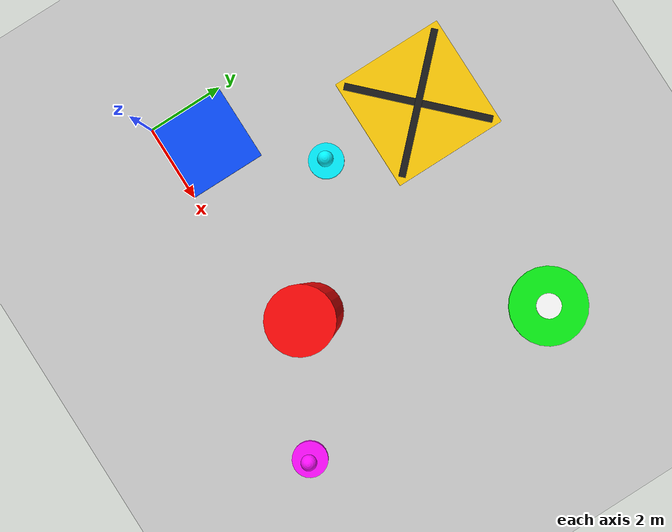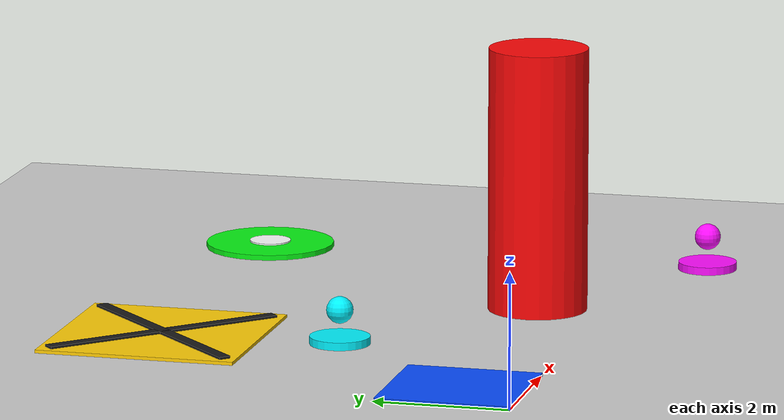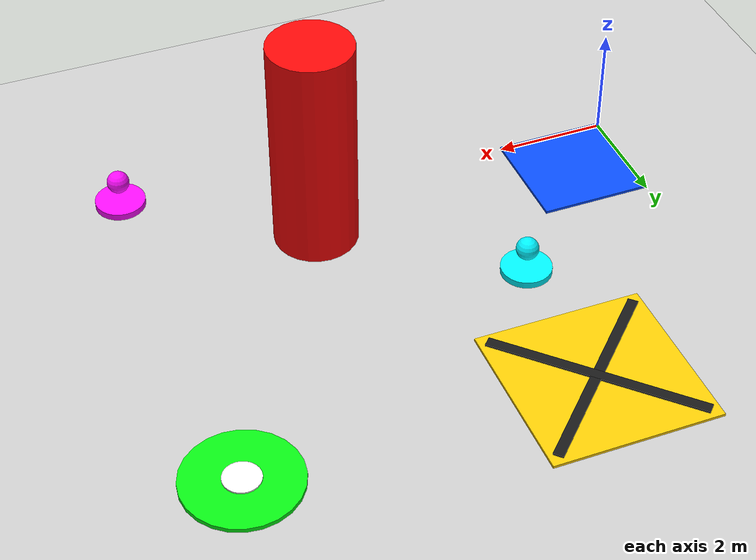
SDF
<?xml version="1.0"?>
<sdf version="1.6">
  <world name="task2_landmarks">
    <gravity>0 0 -9.8066</gravity>
    <magnetic_field>0.21523 0 0.42741</magnetic_field>
    <atmosphere type="adiabatic"/>

    <physics name="default_physics" default="0" type="ode">
      <max_step_size>0.004</max_step_size>
      <real_time_factor>1</real_time_factor>
      <real_time_update_rate>250</real_time_update_rate>
    </physics>

    <scene>
      <ambient>0.45 0.45 0.45 1</ambient>
      <background>0.75 0.85 1 1</background>
      <shadows>true</shadows>
      <grid>true</grid>
    </scene>

    <spherical_coordinates>
      <surface_model>EARTH_WGS84</surface_model>
      <latitude_deg>47.397742</latitude_deg>
      <longitude_deg>8.545594</longitude_deg>
      <elevation>488</elevation>
      <heading_deg>0</heading_deg>
    </spherical_coordinates>

    <include>
      <uri>model://sun</uri>
    </include>
    <include>
      <uri>model://ground_plane</uri>
    </include>

    <!-- Landmark 1: a tall red cylinder that the route must avoid. -->
    <model name="red_cylinder_obstacle">
      <static>true</static>
      <pose>6.01 0.98 2 0 0 0</pose>
      <link name="link">
        <collision name="collision">
          <geometry><cylinder><radius>0.75</radius><length>4</length></cylinder></geometry>
        </collision>
        <visual name="visual">
          <geometry><cylinder><radius>0.75</radius><length>4</length></cylinder></geometry>
          <material>
            <ambient>0.8 0.02 0.02 1</ambient>
            <diffuse>1 0.03 0.03 1</diffuse>
          </material>
        </visual>
      </link>
    </model>

    <!-- Draggable visual waypoint 1 (cyan), local coordinate (2,-2). -->
    <model name="waypoint_1_cyan">
      <static>true</static>
      <pose>3.01 3.26358 0.10 0 0 0</pose>
      <link name="link">
        <visual name="disk">
          <geometry><cylinder><radius>0.45</radius><length>0.12</length></cylinder></geometry>
          <material><ambient>0 0.75 0.85 1</ambient><diffuse>0 0.95 1 1</diffuse></material>
        </visual>
        <visual name="beacon">
          <pose>0 0 0.45 0 0 0</pose>
          <geometry><sphere><radius>0.20</radius></sphere></geometry>
          <material><ambient>0 0.75 0.85 1</ambient><diffuse>0 0.95 1 1</diffuse></material>
        </visual>
      </link>
    </model>

    <!-- Draggable visual waypoint 2 (magenta), local coordinate (8,-2). -->
    <model name="waypoint_2_magenta">
      <static>true</static>
      <pose>9.01 -1.02 0.10 0 0 0</pose>
      <link name="link">
        <visual name="disk">
          <geometry><cylinder><radius>0.45</radius><length>0.12</length></cylinder></geometry>
          <material><ambient>0.75 0.05 0.75 1</ambient><diffuse>1 0.05 1 1</diffuse></material>
        </visual>
        <visual name="beacon">
          <pose>0 0 0.45 0 0 0</pose>
          <geometry><sphere><radius>0.20</radius></sphere></geometry>
          <material><ambient>0.75 0.05 0.75 1</ambient><diffuse>1 0.05 1 1</diffuse></material>
        </visual>
      </link>
    </model>

    <!-- Landmark 2 and draggable final waypoint: green target disk. -->
    <model name="green_target_point">
      <static>true</static>
      <pose>9.01 5.98 0.04 0 0 0</pose>
      <link name="link">
        <collision name="collision">
          <geometry><cylinder><radius>1.0</radius><length>0.08</length></cylinder></geometry>
        </collision>
        <visual name="outer_ring">
          <geometry><cylinder><radius>1.0</radius><length>0.08</length></cylinder></geometry>
          <material>
            <ambient>0.02 0.65 0.05 1</ambient>
            <diffuse>0.03 0.95 0.08 1</diffuse>
          </material>
        </visual>
        <visual name="center">
          <pose>0 0 0.05 0 0 0</pose>
          <geometry><cylinder><radius>0.32</radius><length>0.03</length></cylinder></geometry>
          <material>
            <ambient>0.9 0.9 0.9 1</ambient>
            <diffuse>1 1 1 1</diffuse>
          </material>
        </visual>
      </link>
    </model>

    <!-- Landmark 3: a clearly marked yellow no-fly area. -->
    <model name="yellow_no_fly_zone">
      <static>true</static>
      <pose>3.01 5.98 0.025 0 0 0</pose>
      <link name="link">
        <collision name="collision">
          <geometry><box><size>3 3 0.05</size></box></geometry>
        </collision>
        <visual name="zone">
          <geometry><box><size>3 3 0.05</size></box></geometry>
          <material>
            <ambient>0.85 0.65 0.02 1</ambient>
            <diffuse>1 0.8 0.02 1</diffuse>
          </material>
        </visual>
        <visual name="stripe_x">
          <pose>0 0 0.04 0 0 0.785398</pose>
          <geometry><box><size>3.8 0.18 0.04</size></box></geometry>
          <material><ambient>0.1 0.1 0.1 1</ambient><diffuse>0.1 0.1 0.1 1</diffuse></material>
        </visual>
        <visual name="stripe_y">
          <pose>0 0 0.04 0 0 -0.785398</pose>
          <geometry><box><size>3.8 0.18 0.04</size></box></geometry>
          <material><ambient>0.1 0.1 0.1 1</ambient><diffuse>0.1 0.1 0.1 1</diffuse></material>
        </visual>
      </link>
    </model>

    <!-- Blue start/landing pad at the local-frame origin. -->
    <model name="blue_start_pad">
      <static>true</static>
      <pose>1.01 0.98 0.025 0 0 0</pose>
      <link name="link">
        <collision name="collision">
          <geometry><box><size>2 2 0.05</size></box></geometry>
        </collision>
        <visual name="visual">
          <geometry><box><size>2 2 0.05</size></box></geometry>
          <material><ambient>0.02 0.2 0.8 1</ambient><diffuse>0.03 0.3 1 1</diffuse></material>
        </visual>
      </link>
    </model>

    <gui fullscreen="0">
      <camera name="task2_overview">
        <pose>14 -16 13 0 0.48 2.35</pose>
        <view_controller>orbit</view_controller>
      </camera>
    </gui>
  </world>
</sdf>
